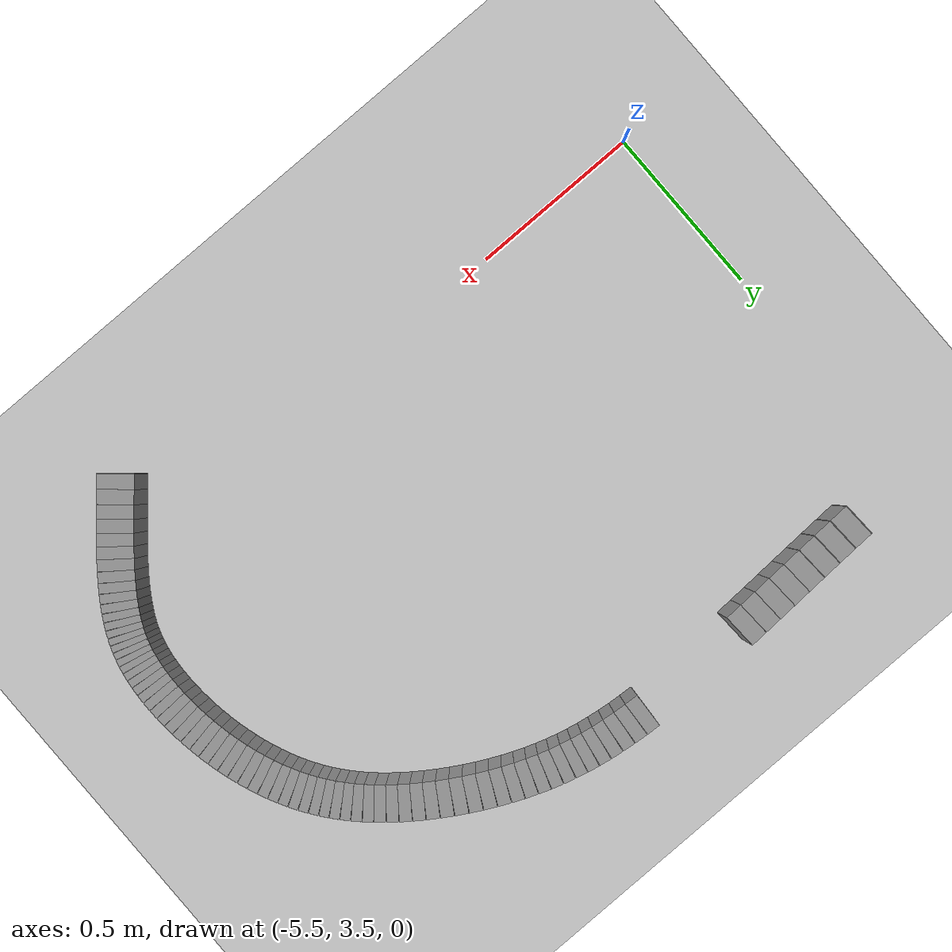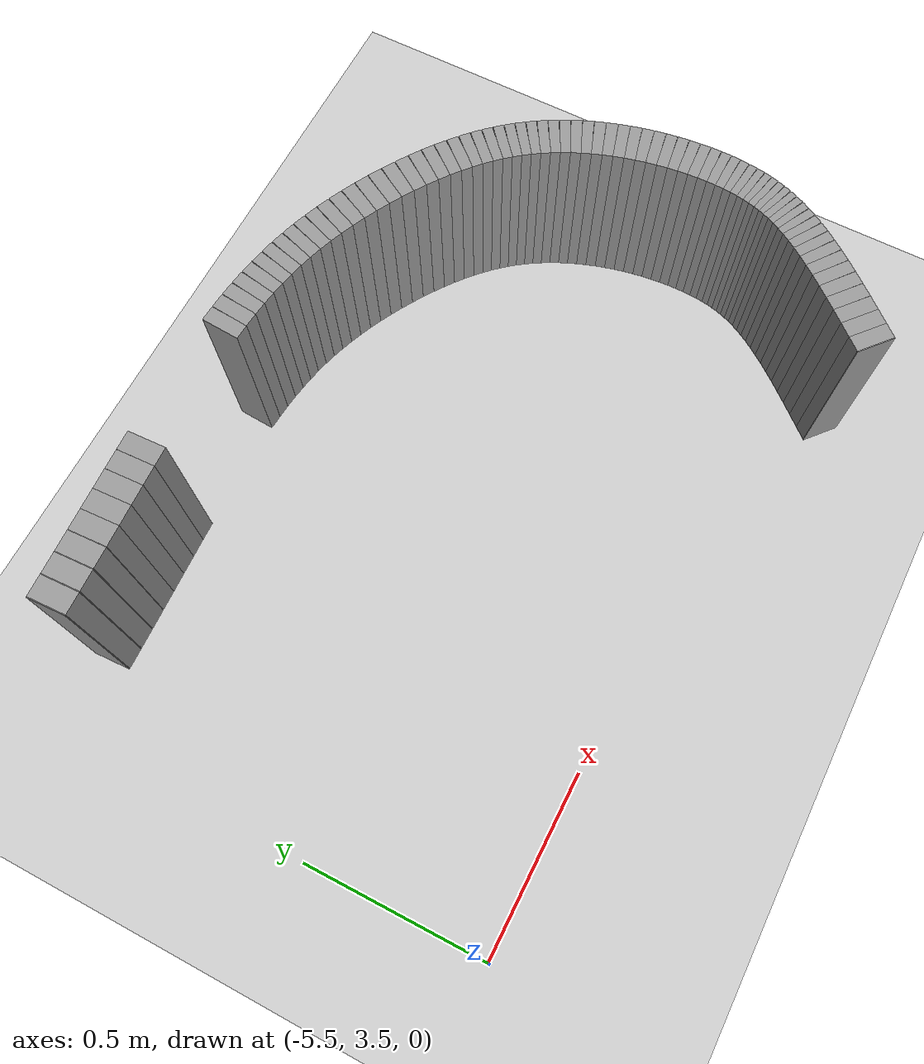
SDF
<sdf version="1.6">
 <world name="default">
  <include><uri>model://ground_plane</uri></include>
  <include><uri>model://sun</uri></include>
  <model name="wall_478_inward">
   <static>true</static>
   <link name="link">
    <collision name="collision">
     <geometry><box><size>0.001976063009838599 0.1 0.5</size></box></geometry>
    </collision>
    <visual name="visual">
     <geometry><box><size>0.001976063009838599 0.1 0.5</size></box></geometry>
     <material>
      <script><uri>file://media/materials/scripts/gazebo.material</uri><name>Gazebo/Gray</name></script>
     </material>
    </visual>
   </link>
   <pose>-5.289220527766878 4.687379544247734 0.25 0 0 0.038749761401294075</pose>
  </model>
  <model name="wall_479_inward">
   <static>true</static>
   <link name="link">
    <collision name="collision">
     <geometry><box><size>0.05658217440763106 0.1 0.5</size></box></geometry>
    </collision>
    <visual name="visual">
     <geometry><box><size>0.05658217440763106 0.1 0.5</size></box></geometry>
     <material>
      <script><uri>file://media/materials/scripts/gazebo.material</uri><name>Gazebo/Gray</name></script>
     </material>
    </visual>
   </link>
   <pose>-5.259965609207002 4.688569680065838 0.25 0 0 0.040725825697488435</pose>
  </model>
  <model name="wall_480_inward">
   <static>true</static>
   <link name="link">
    <collision name="collision">
     <geometry><box><size>0.0017748735314252072 0.1 0.5</size></box></geometry>
    </collision>
    <visual name="visual">
     <geometry><box><size>0.0017748735314252072 0.1 0.5</size></box></geometry>
     <material>
      <script><uri>file://media/materials/scripts/gazebo.material</uri><name>Gazebo/Gray</name></script>
     </material>
    </visual>
   </link>
   <pose>-5.230811345064852 4.689759244809748 0.25 0 0 0.042500700160769886</pose>
  </model>
  <model name="wall_481_inward">
   <static>true</static>
   <link name="link">
    <collision name="collision">
     <geometry><box><size>0.055690960988856834 0.1 0.5</size></box></geometry>
    </collision>
    <visual name="visual">
     <geometry><box><size>0.055690960988856834 0.1 0.5</size></box></geometry>
     <material>
      <script><uri>file://media/materials/scripts/gazebo.material</uri><name>Gazebo/Gray</name></script>
     </material>
    </visual>
   </link>
   <pose>-5.202106517835257 4.691029422022908 0.25 0 0 0.04427557462406313</pose>
  </model>
  <model name="wall_482_inward">
   <static>true</static>
   <link name="link">
    <collision name="collision">
     <geometry><box><size>0.001411686158597856 0.1 0.5</size></box></geometry>
    </collision>
    <visual name="visual">
     <geometry><box><size>0.001411686158597856 0.1 0.5</size></box></geometry>
     <material>
      <script><uri>file://media/materials/scripts/gazebo.material</uri><name>Gazebo/Gray</name></script>
     </material>
    </visual>
   </link>
   <pose>-5.173583219454098 4.692294130725463 0.25 0 0 0.04568726125176455</pose>
  </model>
  <model name="wall_483_inward">
   <static>true</static>
   <link name="link">
    <collision name="collision">
     <geometry><box><size>0.054936826837466764 0.1 0.5</size></box></geometry>
    </collision>
    <visual name="visual">
     <geometry><box><size>0.054936826837466764 0.1 0.5</size></box></geometry>
     <material>
      <script><uri>file://media/materials/scripts/gazebo.material</uri><name>Gazebo/Gray</name></script>
     </material>
    </visual>
   </link>
   <pose>-5.145440160598871 4.693619622652947 0.25 0 0 0.04709894787902389</pose>
  </model>
  <model name="wall_484_inward">
   <static>true</static>
   <link name="link">
    <collision name="collision">
     <geometry><box><size>0.0009188267543077816 0.1 0.5</size></box></geometry>
    </collision>
    <visual name="visual">
     <geometry><box><size>0.0009188267543077816 0.1 0.5</size></box></geometry>
     <material>
      <script><uri>file://media/materials/scripts/gazebo.material</uri><name>Gazebo/Gray</name></script>
     </material>
    </visual>
   </link>
   <pose>-5.11754332444616 4.694934929292513 0.25 0 0 0.04801777476280095</pose>
  </model>
  <model name="wall_485_inward">
   <static>true</static>
   <link name="link">
    <collision name="collision">
     <geometry><box><size>0.05462164518964045 0.1 0.5</size></box></geometry>
    </collision>
    <visual name="visual">
     <geometry><box><size>0.05462164518964045 0.1 0.5</size></box></geometry>
     <material>
      <script><uri>file://media/materials/scripts/gazebo.material</uri><name>Gazebo/Gray</name></script>
     </material>
    </visual>
   </link>
   <pose>-5.089806315494746 4.696292990314113 0.25 0 0 0.04893821536705087</pose>
  </model>
  <model name="wall_486_inward">
   <static>true</static>
   <link name="link">
    <collision name="collision">
     <geometry><box><size>0.05363862126948791 0.1 0.5</size></box></geometry>
    </collision>
    <visual name="visual">
     <geometry><box><size>0.05363862126948791 0.1 0.5</size></box></geometry>
     <material>
      <script><uri>file://media/materials/scripts/gazebo.material</uri><name>Gazebo/Gray</name></script>
     </material>
    </visual>
   </link>
   <pose>-5.035741770381845 4.698956827460041 0.25 0 0 0.049530383053687975</pose>
  </model>
  <model name="wall_487_inward">
   <static>true</static>
   <link name="link">
    <collision name="collision">
     <geometry><box><size>0.05267440713857644 0.1 0.5</size></box></geometry>
    </collision>
    <visual name="visual">
     <geometry><box><size>0.05267440713857644 0.1 0.5</size></box></geometry>
     <material>
      <script><uri>file://media/materials/scripts/gazebo.material</uri><name>Gazebo/Gray</name></script>
     </material>
    </visual>
   </link>
   <pose>-4.982649357657888 4.701566465896023 0.25 0 0 0.04868844000242216</pose>
  </model>
  <model name="wall_488_inward">
   <static>true</static>
   <link name="link">
    <collision name="collision">
     <geometry><box><size>0.05159664939974803 0.1 0.5</size></box></geometry>
    </collision>
    <visual name="visual">
     <geometry><box><size>0.05159664939974803 0.1 0.5</size></box></geometry>
     <material>
      <script><uri>file://media/materials/scripts/gazebo.material</uri><name>Gazebo/Gray</name></script>
     </material>
    </visual>
   </link>
   <pose>-4.930572640823364 4.7040413131059715 0.25 0 0 0.046261223802384684</pose>
  </model>
  <model name="wall_489_inward">
   <static>true</static>
   <link name="link">
    <collision name="collision">
     <geometry><box><size>0.05054165965281284 0.1 0.5</size></box></geometry>
    </collision>
    <visual name="visual">
     <geometry><box><size>0.05054165965281284 0.1 0.5</size></box></geometry>
     <material>
      <script><uri>file://media/materials/scripts/gazebo.material</uri><name>Gazebo/Gray</name></script>
     </material>
    </visual>
   </link>
   <pose>-4.879553548046527 4.7062995819128774 0.25 0 0 0.04216514042592453</pose>
  </model>
  <model name="wall_497_inward">
   <static>true</static>
   <link name="link">
    <collision name="collision">
     <geometry><box><size>0.040047677191250505 0.1 0.5</size></box></geometry>
    </collision>
    <visual name="visual">
     <geometry><box><size>0.040047677191250505 0.1 0.5</size></box></geometry>
     <material>
      <script><uri>file://media/materials/scripts/gazebo.material</uri><name>Gazebo/Gray</name></script>
     </material>
    </visual>
   </link>
   <pose>-4.513850760304656 4.707583572420739 0.25 0 0 -0.062262275297875924</pose>
  </model>
  <model name="wall_498_inward">
   <static>true</static>
   <link name="link">
    <collision name="collision">
     <geometry><box><size>0.03847210203671786 0.1 0.5</size></box></geometry>
    </collision>
    <visual name="visual">
     <geometry><box><size>0.03847210203671786 0.1 0.5</size></box></geometry>
     <material>
      <script><uri>file://media/materials/scripts/gazebo.material</uri><name>Gazebo/Gray</name></script>
     </material>
    </visual>
   </link>
   <pose>-4.474701027474194 4.704682302196661 0.25 0 0 -0.08616091386697536</pose>
  </model>
  <model name="wall_499_inward">
   <static>true</static>
   <link name="link">
    <collision name="collision">
     <geometry><box><size>0.037002718368662806 0.1 0.5</size></box></geometry>
    </collision>
    <visual name="visual">
     <geometry><box><size>0.037002718368662806 0.1 0.5</size></box></geometry>
     <material>
      <script><uri>file://media/materials/scripts/gazebo.material</uri><name>Gazebo/Gray</name></script>
     </material>
    </visual>
   </link>
   <pose>-4.437152340914572 4.700946306858908 0.25 0 0 -0.11269768521914945</pose>
  </model>
  <model name="wall_500_inward">
   <static>true</static>
   <link name="link">
    <collision name="collision">
     <geometry><box><size>0.035723112639852735 0.1 0.5</size></box></geometry>
    </collision>
    <visual name="visual">
     <geometry><box><size>0.035723112639852735 0.1 0.5</size></box></geometry>
     <material>
      <script><uri>file://media/materials/scripts/gazebo.material</uri><name>Gazebo/Gray</name></script>
     </material>
    </visual>
   </link>
   <pose>-4.401085745169542 4.696343605535688 0.25 0 0 -0.14167345800607264</pose>
  </model>
  <model name="wall_501_inward">
   <static>true</static>
   <link name="link">
    <collision name="collision">
     <geometry><box><size>0.034712360752286175 0.1 0.5</size></box></geometry>
    </collision>
    <visual name="visual">
     <geometry><box><size>0.034712360752286175 0.1 0.5</size></box></geometry>
     <material>
      <script><uri>file://media/materials/scripts/gazebo.material</uri><name>Gazebo/Gray</name></script>
     </material>
    </visual>
   </link>
   <pose>-4.366305401134433 4.690837554943715 0.25 0 0 -0.17278562511015563</pose>
  </model>
  <model name="wall_502_inward">
   <static>true</static>
   <link name="link">
    <collision name="collision">
     <geometry><box><size>0.03404724039082901 0.1 0.5</size></box></geometry>
    </collision>
    <visual name="visual">
     <geometry><box><size>0.03404724039082901 0.1 0.5</size></box></geometry>
     <material>
      <script><uri>file://media/materials/scripts/gazebo.material</uri><name>Gazebo/Gray</name></script>
     </material>
    </visual>
   </link>
   <pose>-4.332542500879186 4.684378485984498 0.25 0 0 -0.20557722741900272</pose>
  </model>
  <model name="wall_503_inward">
   <static>true</static>
   <link name="link">
    <collision name="collision">
     <geometry><box><size>0.03375434417483104 0.1 0.5</size></box></geometry>
    </collision>
    <visual name="visual">
     <geometry><box><size>0.03375434417483104 0.1 0.5</size></box></geometry>
     <material>
      <script><uri>file://media/materials/scripts/gazebo.material</uri><name>Gazebo/Gray</name></script>
     </material>
    </visual>
   </link>
   <pose>-4.299481806073844 4.6769002482446815 0.25 0 0 -0.2394766184744926</pose>
  </model>
  <model name="wall_504_inward">
   <static>true</static>
   <link name="link">
    <collision name="collision">
     <geometry><box><size>0.033824497391900604 0.1 0.5</size></box></geometry>
    </collision>
    <visual name="visual">
     <geometry><box><size>0.033824497391900604 0.1 0.5</size></box></geometry>
     <material>
      <script><uri>file://media/materials/scripts/gazebo.material</uri><name>Gazebo/Gray</name></script>
     </material>
    </visual>
   </link>
   <pose>-4.266804503819399 4.668322342428663 0.25 0 0 -0.2739108189601801</pose>
  </model>
  <model name="wall_505_inward">
   <static>true</static>
   <link name="link">
    <collision name="collision">
     <geometry><box><size>0.034218879330714866 0.1 0.5</size></box></geometry>
    </collision>
    <visual name="visual">
     <geometry><box><size>0.034218879330714866 0.1 0.5</size></box></geometry>
     <material>
      <script><uri>file://media/materials/scripts/gazebo.material</uri><name>Gazebo/Gray</name></script>
     </material>
    </visual>
   </link>
   <pose>-4.234219979603386 4.658555974177691 0.25 0 0 -0.3082972279813335</pose>
  </model>
  <model name="wall_506_inward">
   <static>true</static>
   <link name="link">
    <collision name="collision">
     <geometry><box><size>0.03484823802374882 0.1 0.5</size></box></geometry>
    </collision>
    <visual name="visual">
     <geometry><box><size>0.03484823802374882 0.1 0.5</size></box></geometry>
     <material>
      <script><uri>file://media/materials/scripts/gazebo.material</uri><name>Gazebo/Gray</name></script>
     </material>
    </visual>
   </link>
   <pose>-4.201503017586889 4.647518506775187 0.25 0 0 -0.3421387135875708</pose>
  </model>
  <model name="wall_507_inward">
   <static>true</static>
   <link name="link">
    <collision name="collision">
     <geometry><box><size>0.035605466208373016 0.1 0.5</size></box></geometry>
    </collision>
    <visual name="visual">
     <geometry><box><size>0.035605466208373016 0.1 0.5</size></box></geometry>
     <material>
      <script><uri>file://media/materials/scripts/gazebo.material</uri><name>Gazebo/Gray</name></script>
     </material>
    </visual>
   </link>
   <pose>-4.168523849124279 4.6351504554901695 0.25 0 0 -0.3750942815126469</pose>
  </model>
  <model name="wall_508_inward">
   <static>true</static>
   <link name="link">
    <collision name="collision">
     <geometry><box><size>0.036383169665863545 0.1 0.5</size></box></geometry>
    </collision>
    <visual name="visual">
     <geometry><box><size>0.036383169665863545 0.1 0.5</size></box></geometry>
     <material>
      <script><uri>file://media/materials/scripts/gazebo.material</uri><name>Gazebo/Gray</name></script>
     </material>
    </visual>
   </link>
   <pose>-4.135253034299071 4.621427664779407 0.25 0 0 -0.4069596322125918</pose>
  </model>
  <model name="wall_509_inward">
   <static>true</static>
   <link name="link">
    <collision name="collision">
     <geometry><box><size>0.03706294789372716 0.1 0.5</size></box></geometry>
    </collision>
    <visual name="visual">
     <geometry><box><size>0.03706294789372716 0.1 0.5</size></box></geometry>
     <material>
      <script><uri>file://media/materials/scripts/gazebo.material</uri><name>Gazebo/Gray</name></script>
     </material>
    </visual>
   </link>
   <pose>-4.101762610690429 4.606372557830997 0.25 0 0 -0.4376897249115261</pose>
  </model>
  <model name="wall_510_inward">
   <static>true</static>
   <link name="link">
    <collision name="collision">
     <geometry><box><size>0.037544494762697424 0.1 0.5</size></box></geometry>
    </collision>
    <visual name="visual">
     <geometry><box><size>0.037544494762697424 0.1 0.5</size></box></geometry>
     <material>
      <script><uri>file://media/materials/scripts/gazebo.material</uri><name>Gazebo/Gray</name></script>
     </material>
    </visual>
   </link>
   <pose>-4.068219413487628 4.59005955391092 0.25 0 0 -0.4674193709460285</pose>
  </model>
  <model name="wall_511_inward">
   <static>true</static>
   <link name="link">
    <collision name="collision">
     <geometry><box><size>0.037753313252685466 0.1 0.5</size></box></geometry>
    </collision>
    <visual name="visual">
     <geometry><box><size>0.037753313252685466 0.1 0.5</size></box></geometry>
     <material>
      <script><uri>file://media/materials/scripts/gazebo.material</uri><name>Gazebo/Gray</name></script>
     </material>
    </visual>
   </link>
   <pose>-4.034862515516748 4.572610780850438 0.25 0 0 -0.49640261889369997</pose>
  </model>
  <model name="wall_512_inward">
   <static>true</static>
   <link name="link">
    <collision name="collision">
     <geometry><box><size>0.03763972914768563 0.1 0.5</size></box></geometry>
    </collision>
    <visual name="visual">
     <geometry><box><size>0.03763972914768563 0.1 0.5</size></box></geometry>
     <material>
      <script><uri>file://media/materials/scripts/gazebo.material</uri><name>Gazebo/Gray</name></script>
     </material>
    </visual>
   </link>
   <pose>-4.001978951515216 4.554187739823062 0.25 0 0 -0.5249988272326883</pose>
  </model>
  <model name="wall_513_inward">
   <static>true</static>
   <link name="link">
    <collision name="collision">
     <geometry><box><size>0.037187210663965804 0.1 0.5</size></box></geometry>
    </collision>
    <visual name="visual">
     <geometry><box><size>0.037187210663965804 0.1 0.5</size></box></geometry>
     <material>
      <script><uri>file://media/materials/scripts/gazebo.material</uri><name>Gazebo/Gray</name></script>
     </material>
    </visual>
   </link>
   <pose>-3.9698775331866427 4.534978891547766 0.25 0 0 -0.5536293457608537</pose>
  </model>
  <model name="wall_514_inward">
   <static>true</static>
   <link name="link">
    <collision name="collision">
     <geometry><box><size>0.036406285795741955 0.1 0.5</size></box></geometry>
    </collision>
    <visual name="visual">
     <geometry><box><size>0.036406285795741955 0.1 0.5</size></box></geometry>
     <material>
      <script><uri>file://media/materials/scripts/gazebo.material</uri><name>Gazebo/Gray</name></script>
     </material>
    </visual>
   </link>
   <pose>-3.938862477937774 4.515185449172742 0.25 0 0 -0.5827331189155694</pose>
  </model>
  <model name="wall_515_inward">
   <static>true</static>
   <link name="link">
    <collision name="collision">
     <geometry><box><size>0.03533164070058392 0.1 0.5</size></box></geometry>
    </collision>
    <visual name="visual">
     <geometry><box><size>0.03533164070058392 0.1 0.5</size></box></geometry>
     <material>
      <script><uri>file://media/materials/scripts/gazebo.material</uri><name>Gazebo/Gray</name></script>
     </material>
    </visual>
   </link>
   <pose>-3.9092116369134597 4.495008221541653 0.25 0 0 -0.6127456487886301</pose>
  </model>
  <model name="wall_516_inward">
   <static>true</static>
   <link name="link">
    <collision name="collision">
     <geometry><box><size>0.03403199227062374 0.1 0.5</size></box></geometry>
    </collision>
    <visual name="visual">
     <geometry><box><size>0.03403199227062374 0.1 0.5</size></box></geometry>
     <material>
      <script><uri>file://media/materials/scripts/gazebo.material</uri><name>Gazebo/Gray</name></script>
     </material>
    </visual>
   </link>
   <pose>-3.881152601130151 4.47463117011486 0.25 0 0 -0.6440567302703519</pose>
  </model>
  <model name="wall_517_inward">
   <static>true</static>
   <link name="link">
    <collision name="collision">
     <geometry><box><size>0.032594295936980926 0.1 0.5</size></box></geometry>
    </collision>
    <visual name="visual">
     <geometry><box><size>0.032594295936980926 0.1 0.5</size></box></geometry>
     <material>
      <script><uri>file://media/materials/scripts/gazebo.material</uri><name>Gazebo/Gray</name></script>
     </material>
    </visual>
   </link>
   <pose>-3.8548419865045753 4.454205273480589 0.25 0 0 -0.6769422761798218</pose>
  </model>
  <model name="wall_518_inward">
   <static>true</static>
   <link name="link">
    <collision name="collision">
     <geometry><box><size>0.031119817422845312 0.1 0.5</size></box></geometry>
    </collision>
    <visual name="visual">
     <geometry><box><size>0.031119817422845312 0.1 0.5</size></box></geometry>
     <material>
      <script><uri>file://media/materials/scripts/gazebo.material</uri><name>Gazebo/Gray</name></script>
     </material>
    </visual>
   </link>
   <pose>-3.830354473755456 4.433835452632309 0.25 0 0 -0.7115781764284564</pose>
  </model>
  <model name="wall_519_inward">
   <static>true</static>
   <link name="link">
    <collision name="collision">
     <geometry><box><size>0.029710099088477587 0.1 0.5</size></box></geometry>
    </collision>
    <visual name="visual">
     <geometry><box><size>0.029710099088477587 0.1 0.5</size></box></geometry>
     <material>
      <script><uri>file://media/materials/scripts/gazebo.material</uri><name>Gazebo/Gray</name></script>
     </material>
    </visual>
   </link>
   <pose>-3.8076806133702834 4.4135707120372984 0.25 0 0 -0.7479667527397765</pose>
  </model>
  <model name="wall_520_inward">
   <static>true</static>
   <link name="link">
    <collision name="collision">
     <geometry><box><size>0.028461808690664822 0.1 0.5</size></box></geometry>
    </collision>
    <visual name="visual">
     <geometry><box><size>0.028461808690664822 0.1 0.5</size></box></geometry>
     <material>
      <script><uri>file://media/materials/scripts/gazebo.material</uri><name>Gazebo/Gray</name></script>
     </material>
    </visual>
   </link>
   <pose>-3.7867341069780602 4.393398187358462 0.25 0 0 -0.7860044428256442</pose>
  </model>
  <model name="wall_521_inward">
   <static>true</static>
   <link name="link">
    <collision name="collision">
     <geometry><box><size>0.027454156732106307 0.1 0.5</size></box></geometry>
    </collision>
    <visual name="visual">
     <geometry><box><size>0.027454156732106307 0.1 0.5</size></box></geometry>
     <material>
      <script><uri>file://media/materials/scripts/gazebo.material</uri><name>Gazebo/Gray</name></script>
     </material>
    </visual>
   </link>
   <pose>-3.7673669526392466 4.373242323194534 0.25 0 0 -0.8254081835611071</pose>
  </model>
  <model name="wall_522_inward">
   <static>true</static>
   <link name="link">
    <collision name="collision">
     <geometry><box><size>0.02672826551378226 0.1 0.5</size></box></geometry>
    </collision>
    <visual name="visual">
     <geometry><box><size>0.02672826551378226 0.1 0.5</size></box></geometry>
     <material>
      <script><uri>file://media/materials/scripts/gazebo.material</uri><name>Gazebo/Gray</name></script>
     </material>
    </visual>
   </link>
   <pose>-3.7493964000001236 4.352976755089491 0.25 0 0 -0.8658302772748404</pose>
  </model>
  <model name="wall_523_inward">
   <static>true</static>
   <link name="link">
    <collision name="collision">
     <geometry><box><size>0.026304709022961226 0.1 0.5</size></box></geometry>
    </collision>
    <visual name="visual">
     <geometry><box><size>0.026304709022961226 0.1 0.5</size></box></geometry>
     <material>
      <script><uri>file://media/materials/scripts/gazebo.material</uri><name>Gazebo/Gray</name></script>
     </material>
    </visual>
   </link>
   <pose>-3.7326315797946146 4.332439739032464 0.25 0 0 -0.9068611030719058</pose>
  </model>
  <model name="wall_524_inward">
   <static>true</static>
   <link name="link">
    <collision name="collision">
     <geometry><box><size>0.02616881428551037 0.1 0.5</size></box></geometry>
    </collision>
    <visual name="visual">
     <geometry><box><size>0.02616881428551037 0.1 0.5</size></box></geometry>
     <material>
      <script><uri>file://media/materials/scripts/gazebo.material</uri><name>Gazebo/Gray</name></script>
     </material>
    </visual>
   </link>
   <pose>-3.7168952812760256 4.311452971234122 0.25 0 0 -0.9480664630736059</pose>
  </model>
  <model name="wall_525_inward">
   <static>true</static>
   <link name="link">
    <collision name="collision">
     <geometry><box><size>0.026267562299878897 0.1 0.5</size></box></geometry>
    </collision>
    <visual name="visual">
     <geometry><box><size>0.026267562299878897 0.1 0.5</size></box></geometry>
     <material>
      <script><uri>file://media/materials/scripts/gazebo.material</uri><name>Gazebo/Gray</name></script>
     </material>
    </visual>
   </link>
   <pose>-3.7020471345324193 4.289851187058478 0.25 0 0 -0.9890679163940619</pose>
  </model>
  <model name="wall_526_inward">
   <static>true</static>
   <link name="link">
    <collision name="collision">
     <geometry><box><size>0.02655601230128797 0.1 0.5</size></box></geometry>
    </collision>
    <visual name="visual">
     <geometry><box><size>0.02655601230128797 0.1 0.5</size></box></geometry>
     <material>
      <script><uri>file://media/materials/scripts/gazebo.material</uri><name>Gazebo/Gray</name></script>
     </material>
    </visual>
   </link>
   <pose>-3.6879899727116094 4.267497383206079 0.25 0 0 -1.0295791373817686</pose>
  </model>
  <model name="wall_527_inward">
   <static>true</static>
   <link name="link">
    <collision name="collision">
     <geometry><box><size>0.026973075304052258 0.1 0.5</size></box></geometry>
    </collision>
    <visual name="visual">
     <geometry><box><size>0.026973075304052258 0.1 0.5</size></box></geometry>
     <material>
      <script><uri>file://media/materials/scripts/gazebo.material</uri><name>Gazebo/Gray</name></script>
     </material>
    </visual>
   </link>
   <pose>-3.6746662006895763 4.244291024778579 0.25 0 0 -1.0693236022188124</pose>
  </model>
  <model name="wall_528_inward">
   <static>true</static>
   <link name="link">
    <collision name="collision">
     <geometry><box><size>0.027446630902149945 0.1 0.5</size></box></geometry>
    </collision>
    <visual name="visual">
     <geometry><box><size>0.027446630902149945 0.1 0.5</size></box></geometry>
     <material>
      <script><uri>file://media/materials/scripts/gazebo.material</uri><name>Gazebo/Gray</name></script>
     </material>
    </visual>
   </link>
   <pose>-3.662058333120507 4.220184211393896 0.25 0 0 -1.1081749514562067</pose>
  </model>
  <model name="wall_529_inward">
   <static>true</static>
   <link name="link">
    <collision name="collision">
     <geometry><box><size>0.02793460740715989 0.1 0.5</size></box></geometry>
    </collision>
    <visual name="visual">
     <geometry><box><size>0.02793460740715989 0.1 0.5</size></box></geometry>
     <material>
      <script><uri>file://media/materials/scripts/gazebo.material</uri><name>Gazebo/Gray</name></script>
     </material>
    </visual>
   </link>
   <pose>-3.650178019410477 4.195177143103647 0.25 0 0 -1.1460595284286947</pose>
  </model>
  <model name="wall_530_inward">
   <static>true</static>
   <link name="link">
    <collision name="collision">
     <geometry><box><size>0.028397331297370286 0.1 0.5</size></box></geometry>
    </collision>
    <visual name="visual">
     <geometry><box><size>0.028397331297370286 0.1 0.5</size></box></geometry>
     <material>
      <script><uri>file://media/materials/scripts/gazebo.material</uri><name>Gazebo/Gray</name></script>
     </material>
    </visual>
   </link>
   <pose>-3.6390523223430873 4.16930687026791 0.25 0 0 -1.182937505584087</pose>
  </model>
  <model name="wall_531_inward">
   <static>true</static>
   <link name="link">
    <collision name="collision">
     <geometry><box><size>0.028801601642741082 0.1 0.5</size></box></geometry>
    </collision>
    <visual name="visual">
     <geometry><box><size>0.028801601642741082 0.1 0.5</size></box></geometry>
     <material>
      <script><uri>file://media/materials/scripts/gazebo.material</uri><name>Gazebo/Gray</name></script>
     </material>
    </visual>
   </link>
   <pose>-3.6287177015462873 4.142644880510916 0.25 0 0 -1.218830698713994</pose>
  </model>
  <model name="wall_532_inward">
   <static>true</static>
   <link name="link">
    <collision name="collision">
     <geometry><box><size>0.0291280901814484 0.1 0.5</size></box></geometry>
    </collision>
    <visual name="visual">
     <geometry><box><size>0.0291280901814484 0.1 0.5</size></box></geometry>
     <material>
      <script><uri>file://media/materials/scripts/gazebo.material</uri><name>Gazebo/Gray</name></script>
     </material>
    </visual>
   </link>
   <pose>-3.6192130632182824 4.1152885658090295 0.25 0 0 -1.2537827778114858</pose>
  </model>
  <model name="wall_533_inward">
   <static>true</static>
   <link name="link">
    <collision name="collision">
     <geometry><box><size>0.029368172085209678 0.1 0.5</size></box></geometry>
    </collision>
    <visual name="visual">
     <geometry><box><size>0.029368172085209678 0.1 0.5</size></box></geometry>
     <material>
      <script><uri>file://media/materials/scripts/gazebo.material</uri><name>Gazebo/Gray</name></script>
     </material>
    </visual>
   </link>
   <pose>-3.610573489511041 4.08735001377331 0.25 0 0 -1.2878551309435584</pose>
  </model>
  <model name="wall_534_inward">
   <static>true</static>
   <link name="link">
    <collision name="collision">
     <geometry><box><size>0.029505204169563388 0.1 0.5</size></box></geometry>
    </collision>
    <visual name="visual">
     <geometry><box><size>0.029505204169563388 0.1 0.5</size></box></geometry>
     <material>
      <script><uri>file://media/materials/scripts/gazebo.material</uri><name>Gazebo/Gray</name></script>
     </material>
    </visual>
   </link>
   <pose>-3.6028285887199902 4.058954669287237 0.25 0 0 -1.3211090815824427</pose>
  </model>
  <model name="wall_535_inward">
   <static>true</static>
   <link name="link">
    <collision name="collision">
     <geometry><box><size>0.029516315765478716 0.1 0.5</size></box></geometry>
    </collision>
    <visual name="visual">
     <geometry><box><size>0.029516315765478716 0.1 0.5</size></box></geometry>
     <material>
      <script><uri>file://media/materials/scripts/gazebo.material</uri><name>Gazebo/Gray</name></script>
     </material>
    </visual>
   </link>
   <pose>-3.596003836387414 4.030247927884641 0.25 0 0 -1.35366272836094</pose>
  </model>
  <model name="wall_536_inward">
   <static>true</static>
   <link name="link">
    <collision name="collision">
     <geometry><box><size>0.02939561979285881 0.1 0.5</size></box></geometry>
    </collision>
    <visual name="visual">
     <geometry><box><size>0.02939561979285881 0.1 0.5</size></box></geometry>
     <material>
      <script><uri>file://media/materials/scripts/gazebo.material</uri><name>Gazebo/Gray</name></script>
     </material>
    </visual>
   </link>
   <pose>-3.5901190800092113 4.001389628714753 0.25 0 0 -1.385673508214767</pose>
  </model>
  <model name="wall_537_inward">
   <static>true</static>
   <link name="link">
    <collision name="collision">
     <geometry><box><size>0.029125758441506434 0.1 0.5</size></box></geometry>
    </collision>
    <visual name="visual">
     <geometry><box><size>0.029125758441506434 0.1 0.5</size></box></geometry>
     <material>
      <script><uri>file://media/materials/scripts/gazebo.material</uri><name>Gazebo/Gray</name></script>
     </material>
    </visual>
   </link>
   <pose>-3.5851870952687133 3.97255129664675 0.25 0 0 -1.4172987282780038</pose>
  </model>
  <model name="wall_538_inward">
   <static>true</static>
   <link name="link">
    <collision name="collision">
     <geometry><box><size>0.02868342651569928 0.1 0.5</size></box></geometry>
    </collision>
    <visual name="visual">
     <geometry><box><size>0.02868342651569928 0.1 0.5</size></box></geometry>
     <material>
      <script><uri>file://media/materials/scripts/gazebo.material</uri><name>Gazebo/Gray</name></script>
     </material>
    </visual>
   </link>
   <pose>-3.5812149418792165 3.9439245528316356 0.25 0 0 -1.4487821140717265</pose>
  </model>
  <model name="wall_539_inward">
   <static>true</static>
   <link name="link">
    <collision name="collision">
     <geometry><box><size>0.02806191330486792 0.1 0.5</size></box></geometry>
    </collision>
    <visual name="visual">
     <geometry><box><size>0.02806191330486792 0.1 0.5</size></box></geometry>
     <material>
      <script><uri>file://media/materials/scripts/gazebo.material</uri><name>Gazebo/Gray</name></script>
     </material>
    </visual>
   </link>
   <pose>-3.578202797346167 3.915715791657832 0.25 0 0 -1.480402140037747</pose>
  </model>
  <model name="wall_540_inward">
   <static>true</static>
   <link name="link">
    <collision name="collision">
     <geometry><box><size>0.02724762327941896 0.1 0.5</size></box></geometry>
    </collision>
    <visual name="visual">
     <geometry><box><size>0.02724762327941896 0.1 0.5</size></box></geometry>
     <material>
      <script><uri>file://media/materials/scripts/gazebo.material</uri><name>Gazebo/Gray</name></script>
     </material>
    </visual>
   </link>
   <pose>-3.576141987212705 3.888141478377279 0.25 0 0 -1.5124668124396092</pose>
  </model>
  <model name="wall_541_inward">
   <static>true</static>
   <link name="link">
    <collision name="collision">
     <geometry><box><size>0.026241803137164676 0.1 0.5</size></box></geometry>
    </collision>
    <visual name="visual">
     <geometry><box><size>0.026241803137164676 0.1 0.5</size></box></geometry>
     <material>
      <script><uri>file://media/materials/scripts/gazebo.material</uri><name>Gazebo/Gray</name></script>
     </material>
    </visual>
   </link>
   <pose>-3.5750139170359123 3.8614241829257328 0.25 0 0 -1.545349413934</pose>
  </model>
  <model name="wall_542_inward">
   <static>true</static>
   <link name="link">
    <collision name="collision">
     <geometry><box><size>0.02506809736380469 0.1 0.5</size></box></geometry>
    </collision>
    <visual name="visual">
     <geometry><box><size>0.02506809736380469 0.1 0.5</size></box></geometry>
     <material>
      <script><uri>file://media/materials/scripts/gazebo.material</uri><name>Gazebo/Gray</name></script>
     </material>
    </visual>
   </link>
   <pose>-3.5747879177139903 3.8357739446544934 0.25 0 0 -1.5794010815189066</pose>
  </model>
  <model name="wall_543_inward">
   <static>true</static>
   <link name="link">
    <collision name="collision">
     <geometry><box><size>0.02376865648677227 0.1 0.5</size></box></geometry>
    </collision>
    <visual name="visual">
     <geometry><box><size>0.02376865648677227 0.1 0.5</size></box></geometry>
     <material>
      <script><uri>file://media/materials/scripts/gazebo.material</uri><name>Gazebo/Gray</name></script>
     </material>
    </visual>
   </link>
   <pose>-3.57542045129295 3.8113676195296127 0.25 0 0 -1.6149597898987045</pose>
  </model>
  <model name="wall_544_inward">
   <static>true</static>
   <link name="link">
    <collision name="collision">
     <geometry><box><size>0.022404264456511606 0.1 0.5</size></box></geometry>
    </collision>
    <visual name="visual">
     <geometry><box><size>0.022404264456511606 0.1 0.5</size></box></geometry>
     <material>
      <script><uri>file://media/materials/scripts/gazebo.material</uri><name>Gazebo/Gray</name></script>
     </material>
    </visual>
   </link>
   <pose>-3.5768568116018677 3.7883299066081184 0.25 0 0 -1.6522707468962397</pose>
  </model>
  <model name="wall_545_inward">
   <static>true</static>
   <link name="link">
    <collision name="collision">
     <geometry><box><size>0.021056964861855373 0.1 0.5</size></box></geometry>
    </collision>
    <visual name="visual">
     <geometry><box><size>0.021056964861855373 0.1 0.5</size></box></geometry>
     <material>
      <script><uri>file://media/materials/scripts/gazebo.material</uri><name>Gazebo/Gray</name></script>
     </material>
    </visual>
   </link>
   <pose>-3.5790361554515275 3.766713046035871 0.25 0 0 -1.6914926467325426</pose>
  </model>
  <model name="wall_546_inward">
   <static>true</static>
   <link name="link">
    <collision name="collision">
     <geometry><box><size>0.01981239758668202 0.1 0.5</size></box></geometry>
    </collision>
    <visual name="visual">
     <geometry><box><size>0.01981239758668202 0.1 0.5</size></box></geometry>
     <material>
      <script><uri>file://media/materials/scripts/gazebo.material</uri><name>Gazebo/Gray</name></script>
     </material>
    </visual>
   </link>
   <pose>-3.5818997888804613 3.7464843658821647 0.25 0 0 -1.732609493424951</pose>
  </model>
  <model name="wall_547_inward">
   <static>true</static>
   <link name="link">
    <collision name="collision">
     <geometry><box><size>0.018773848703594085 0.1 0.5</size></box></geometry>
    </collision>
    <visual name="visual">
     <geometry><box><size>0.018773848703594085 0.1 0.5</size></box></geometry>
     <material>
      <script><uri>file://media/materials/scripts/gazebo.material</uri><name>Gazebo/Gray</name></script>
     </material>
    </visual>
   </link>
   <pose>-3.585403951302302 3.727516646765028 0.25 0 0 -1.7755053243290975</pose>
  </model>
  <model name="wall_548_inward">
   <static>true</static>
   <link name="link">
    <collision name="collision">
     <geometry><box><size>0.018046401537317493 0.1 0.5</size></box></geometry>
    </collision>
    <visual name="visual">
     <geometry><box><size>0.018046401537317493 0.1 0.5</size></box></geometry>
     <material>
      <script><uri>file://media/materials/scripts/gazebo.material</uri><name>Gazebo/Gray</name></script>
     </material>
    </visual>
   </link>
   <pose>-3.589535797933892 3.7095808054148334 0.25 0 0 -1.8197985924982274</pose>
  </model>
  <model name="wall_549_inward">
   <static>true</static>
   <link name="link">
    <collision name="collision">
     <geometry><box><size>0.01769424703250606 0.1 0.5</size></box></geometry>
    </collision>
    <visual name="visual">
     <geometry><box><size>0.01769424703250606 0.1 0.5</size></box></geometry>
     <material>
      <script><uri>file://media/materials/scripts/gazebo.material</uri><name>Gazebo/Gray</name></script>
     </material>
    </visual>
   </link>
   <pose>-3.594324859508731 3.6923688806773742 0.25 0 0 -1.8649929474194766</pose>
  </model>
  <model name="wall_550_inward">
   <static>true</static>
   <link name="link">
    <collision name="collision">
     <geometry><box><size>0.01776489930651885 0.1 0.5</size></box></geometry>
    </collision>
    <visual name="visual">
     <geometry><box><size>0.01776489930651885 0.1 0.5</size></box></geometry>
     <material>
      <script><uri>file://media/materials/scripts/gazebo.material</uri><name>Gazebo/Gray</name></script>
     </material>
    </visual>
   </link>
   <pose>-3.5998497028113827 3.675526927455702 0.25 0 0 -1.9104680696295309</pose>
  </model>
  <model name="wall_551_inward">
   <static>true</static>
   <link name="link">
    <collision name="collision">
     <geometry><box><size>0.01826716571824852 0.1 0.5</size></box></geometry>
    </collision>
    <visual name="visual">
     <geometry><box><size>0.01826716571824852 0.1 0.5</size></box></geometry>
     <material>
      <script><uri>file://media/materials/scripts/gazebo.material</uri><name>Gazebo/Gray</name></script>
     </material>
    </visual>
   </link>
   <pose>-3.6062370834775415 3.658686081738554 0.25 0 0 -1.955530167383634</pose>
  </model>
  <model name="wall_552_inward">
   <static>true</static>
   <link name="link">
    <collision name="collision">
     <geometry><box><size>0.019182052653519528 0.1 0.5</size></box></geometry>
    </collision>
    <visual name="visual">
     <geometry><box><size>0.019182052653519528 0.1 0.5</size></box></geometry>
     <material>
      <script><uri>file://media/materials/scripts/gazebo.material</uri><name>Gazebo/Gray</name></script>
     </material>
    </visual>
   </link>
   <pose>-3.613651848670745 3.6414970446312944 0.25 0 0 -1.9994889533583742</pose>
  </model>
  <model name="wall_553_inward">
   <static>true</static>
   <link name="link">
    <collision name="collision">
     <geometry><box><size>0.020460950666694563 0.1 0.5</size></box></geometry>
    </collision>
    <visual name="visual">
     <geometry><box><size>0.020460950666694563 0.1 0.5</size></box></geometry>
     <material>
      <script><uri>file://media/materials/scripts/gazebo.material</uri><name>Gazebo/Gray</name></script>
     </material>
    </visual>
   </link>
   <pose>-3.6222798510014202 3.623656781974807 0.25 0 0 -2.041667296464404</pose>
  </model>
  <model name="wall_554_inward">
   <static>true</static>
   <link name="link">
    <collision name="collision">
     <geometry><box><size>0.022020331826667044 0.1 0.5</size></box></geometry>
    </collision>
    <visual name="visual">
     <geometry><box><size>0.022020331826667044 0.1 0.5</size></box></geometry>
     <material>
      <script><uri>file://media/materials/scripts/gazebo.material</uri><name>Gazebo/Gray</name></script>
     </material>
    </visual>
   </link>
   <pose>-3.632302641371721 3.604934338718816 0.25 0 0 -2.0814930356943875</pose>
  </model>
  <model name="wall_555_inward">
   <static>true</static>
   <link name="link">
    <collision name="collision">
     <geometry><box><size>0.023780017498748928 0.1 0.5</size></box></geometry>
    </collision>
    <visual name="visual">
     <geometry><box><size>0.023780017498748928 0.1 0.5</size></box></geometry>
     <material>
      <script><uri>file://media/materials/scripts/gazebo.material</uri><name>Gazebo/Gray</name></script>
     </material>
    </visual>
   </link>
   <pose>-3.64387595475047 3.5851784049492403 0.25 0 0 -2.118524125766132</pose>
  </model>
  <model name="wall_556_inward">
   <static>true</static>
   <link name="link">
    <collision name="collision">
     <geometry><box><size>0.025675773093552946 0.1 0.5</size></box></geometry>
    </collision>
    <visual name="visual">
     <geometry><box><size>0.025675773093552946 0.1 0.5</size></box></geometry>
     <material>
      <script><uri>file://media/materials/scripts/gazebo.material</uri><name>Gazebo/Gray</name></script>
     </material>
    </visual>
   </link>
   <pose>-3.6571204886337503 3.564300765337721 0.25 0 0 -2.1524135569051173</pose>
  </model>
  <model name="wall_557_inward">
   <static>true</static>
   <link name="link">
    <collision name="collision">
     <geometry><box><size>0.027636152705305776 0.1 0.5</size></box></geometry>
    </collision>
    <visual name="visual">
     <geometry><box><size>0.027636152705305776 0.1 0.5</size></box></geometry>
     <material>
      <script><uri>file://media/materials/scripts/gazebo.material</uri><name>Gazebo/Gray</name></script>
     </material>
    </visual>
   </link>
   <pose>-3.672112800357515 3.542264288222079 0.25 0 0 -2.18287793294405</pose>
  </model>
  <model name="wall_558_inward">
   <static>true</static>
   <link name="link">
    <collision name="collision">
     <geometry><box><size>0.02959883016841396 0.1 0.5</size></box></geometry>
    </collision>
    <visual name="visual">
     <geometry><box><size>0.02959883016841396 0.1 0.5</size></box></geometry>
     <material>
      <script><uri>file://media/materials/scripts/gazebo.material</uri><name>Gazebo/Gray</name></script>
     </material>
    </visual>
   </link>
   <pose>-3.6888782933156734 3.5190752577964384 0.25 0 0 -2.209774387959126</pose>
  </model>
  <model name="wall_559_inward">
   <static>true</static>
   <link name="link">
    <collision name="collision">
     <geometry><box><size>0.03154629744628437 0.1 0.5</size></box></geometry>
    </collision>
    <visual name="visual">
     <geometry><box><size>0.03154629744628437 0.1 0.5</size></box></geometry>
     <material>
      <script><uri>file://media/materials/scripts/gazebo.material</uri><name>Gazebo/Gray</name></script>
     </material>
    </visual>
   </link>
   <pose>-3.707402449520999 3.494756305496856 0.25 0 0 -2.232994336413101</pose>
  </model>
  <model name="wall_560_inward">
   <static>true</static>
   <link name="link">
    <collision name="collision">
     <geometry><box><size>0.03345705580835686 0.1 0.5</size></box></geometry>
    </collision>
    <visual name="visual">
     <geometry><box><size>0.03345705580835686 0.1 0.5</size></box></geometry>
     <material>
      <script><uri>file://media/materials/scripts/gazebo.material</uri><name>Gazebo/Gray</name></script>
     </material>
    </visual>
   </link>
   <pose>-3.7276404783822334 3.4693263701702293 0.25 0 0 -2.2524194111604814</pose>
  </model>
  <model name="wall_561_inward">
   <static>true</static>
   <link name="link">
    <collision name="collision">
     <geometry><box><size>0.035312990302781205 0.1 0.5</size></box></geometry>
    </collision>
    <visual name="visual">
     <geometry><box><size>0.035312990302781205 0.1 0.5</size></box></geometry>
     <material>
      <script><uri>file://media/materials/scripts/gazebo.material</uri><name>Gazebo/Gray</name></script>
     </material>
    </visual>
   </link>
   <pose>-3.749517240074635 3.4427996785977055 0.25 0 0 -2.26800459197726</pose>
  </model>
  <model name="wall_562_inward">
   <static>true</static>
   <link name="link">
    <collision name="collision">
     <geometry><box><size>0.03713087869374638 0.1 0.5</size></box></geometry>
    </collision>
    <visual name="visual">
     <geometry><box><size>0.03713087869374638 0.1 0.5</size></box></geometry>
     <material>
      <script><uri>file://media/materials/scripts/gazebo.material</uri><name>Gazebo/Gray</name></script>
     </material>
    </visual>
   </link>
   <pose>-3.7729401265593028 3.415170850127075 0.25 0 0 -2.2796906015436957</pose>
  </model>
  <model name="wall_563_inward">
   <static>true</static>
   <link name="link">
    <collision name="collision">
     <geometry><box><size>0.038913832699443006 0.1 0.5</size></box></geometry>
    </collision>
    <visual name="visual">
     <geometry><box><size>0.038913832699443006 0.1 0.5</size></box></geometry>
     <material>
      <script><uri>file://media/materials/scripts/gazebo.material</uri><name>Gazebo/Gray</name></script>
     </material>
    </visual>
   </link>
   <pose>-3.7978056630765584 3.386406579352285 0.25 0 0 -2.2873791287429315</pose>
  </model>
  <model name="wall_564_inward">
   <static>true</static>
   <link name="link">
    <collision name="collision">
     <geometry><box><size>0.040786412168917895 0.1 0.5</size></box></geometry>
    </collision>
    <visual name="visual">
     <geometry><box><size>0.040786412168917895 0.1 0.5</size></box></geometry>
     <material>
      <script><uri>file://media/materials/scripts/gazebo.material</uri><name>Gazebo/Gray</name></script>
     </material>
    </visual>
   </link>
   <pose>-3.824035630761884 3.356406316254467 0.25 0 0 -2.291022595605375</pose>
  </model>
  <model name="wall_565_inward">
   <static>true</static>
   <link name="link">
    <collision name="collision">
     <geometry><box><size>0.041112322839159054 0.1 0.5</size></box></geometry>
    </collision>
    <visual name="visual">
     <geometry><box><size>0.041112322839159054 0.1 0.5</size></box></geometry>
     <material>
      <script><uri>file://media/materials/scripts/gazebo.material</uri><name>Gazebo/Gray</name></script>
     </material>
    </visual>
   </link>
   <pose>-3.851036546454238 3.3256199369003436 0.25 0 0 -2.2905415181057447</pose>
  </model>
  <model name="wall_566_inward">
   <static>true</static>
   <link name="link">
    <collision name="collision">
     <geometry><box><size>0.0023542122034557237 0.1 0.5</size></box></geometry>
    </collision>
    <visual name="visual">
     <geometry><box><size>0.0023542122034557237 0.1 0.5</size></box></geometry>
     <material>
      <script><uri>file://media/materials/scripts/gazebo.material</uri><name>Gazebo/Gray</name></script>
     </material>
    </visual>
   </link>
   <pose>-3.8653608801076844 3.309275266563164 0.25 0 0 -2.288187303727632</pose>
  </model>
 </world>
</sdf>
